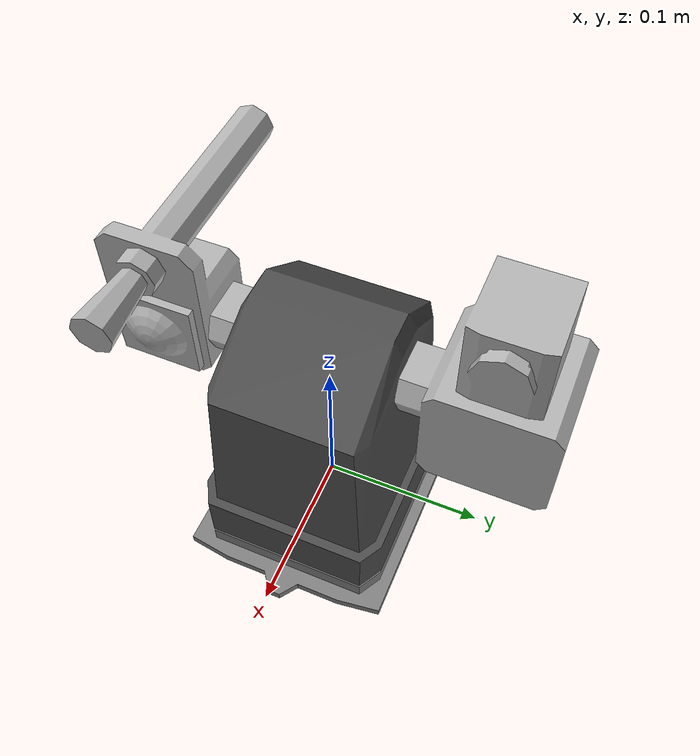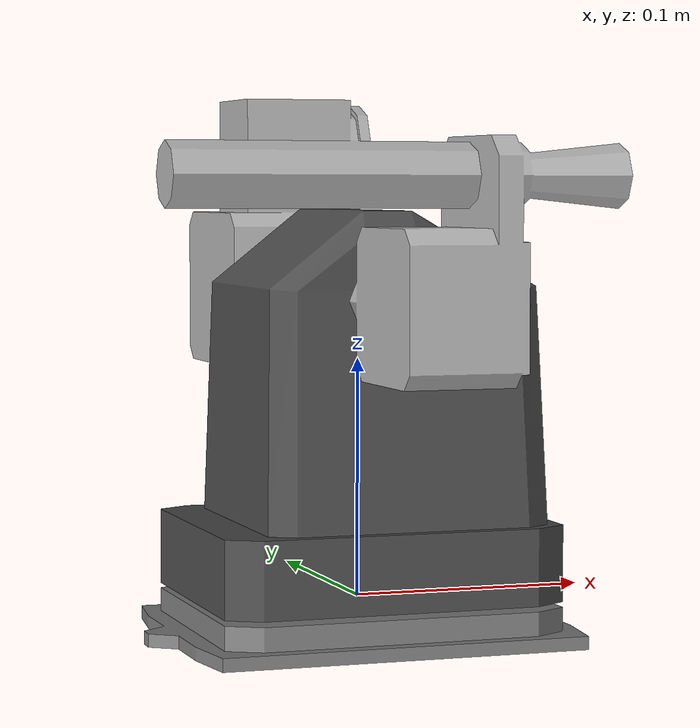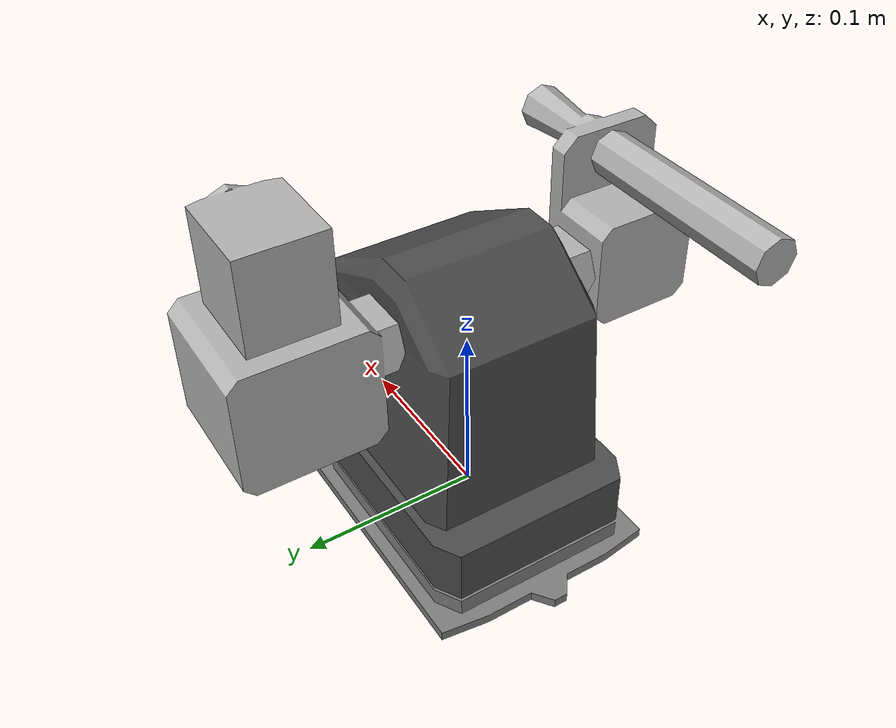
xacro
<?xml version="1.0"?>

<!-- Description of the inspection payload. -->
<robot name="anymal" xmlns:xacro="http://www.ros.org/wiki/xacro">

  <!-- Inspection payload -->
  <xacro:include filename="$(find inspection_payload_description)/urdf/inspection_payload_odrive.urdf.xacro"/>

  <link name="base"/>

  <xacro:inspection_payload name="inspection_payload" parent="base">
    <origin xyz="0.0 0.0 0.0" rpy="0 0 0"/>
  </xacro:inspection_payload>

</robot>

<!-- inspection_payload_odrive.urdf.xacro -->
<robot xmlns:xacro="http://www.ros.org/wiki/xacro">

  <!-- Parameters -->
  <xacro:arg name="simulation" default="false"/>
  <xacro:arg name="simulate_zoom_camera" default="true"/>
  <xacro:arg name="simulate_thermal_camera" default="true"/>

  <!-- Inspection payload description -->
  <xacro:macro name="inspection_payload_description" params="name parent version:='P-PTU-VTAL-A' *origin">

    <joint name="${parent}_to_${name}_mount" type="fixed">
      <parent link="${parent}"/>
      <child link="${name}_mount"/>
      <xacro:insert_block name="origin"/>
    </joint>

    <link name="${name}_mount">
      <visual>
        <origin xyz="0 0 -0.0165" rpy="0 0 0"/>
        <geometry>
          <mesh filename="package://inspection_payload_description/mesh/hatch.dae" scale="1 1 1"/>
        </geometry>
        <material name="gray_hatch">
          <color rgba="0.5 0.5 0.5 1"/>
        </material>
      </visual>
      <inertial>
        <origin xyz="-0.002 0.00 0.001" rpy="0 0 0"/>
        <mass value="0.469"/>
        <inertia ixx="0.000620738" ixy= "0.000009253" ixz="0.000000848"
                 iyy="0.000860056" iyz="0.000000268" izz="0.001239176"/>
      </inertial>
    </link>

    <joint name="${name}_mount_to_pan" type="revolute">
      <physics>
        <provide_feedback>true</provide_feedback>
      </physics>
      <parent link="${name}_mount"/>
      <child link="${name}_pan"/>
      <limit lower="-2.35619" upper="2.35619" effort="20" velocity="2"/>
      <origin xyz="0 0 0" rpy="0 0 0"/>
      <axis xyz="0 0 1"/>
      <!-- random/empirically chosen values (i.e. not physically meaningful), the model crashes if only non-zero damping was defined but no friction -->
      <dynamics damping="0.05" friction="0.01"/>
    </joint>

    <link name="${name}_pan">
      <visual>
        <origin xyz="0 0 -0.0165" rpy="0 0 0"/>
        <geometry>
          <mesh filename="package://inspection_payload_description/mesh/pan.dae" scale="1 1 1"/>
        </geometry>
        <material name="gray_pan">
          <color rgba="0.3 0.3 0.3 1"/>
        </material>
      </visual>
      <inertial>
        <origin xyz="0.006 -0.001 0.054" rpy="0 0 0"/>
        <mass value="1.408"/>
        <inertia ixx="0.007770372" ixy="0.000018673" ixz="0.000498393" iyy="0.008361515" iyz="0.000135184" izz="0.003593977"/>
      </inertial>

      <!-- Inspection Payload self filtering -->
  	  <self_filter>
        <origin xyz="0 0 0.1" rpy="0 0 0"/>
        <geometry>
          <box size="0.3 0.3 0.3"/>
        </geometry>
      </self_filter>
    </link>

    <joint name="${name}_pan_to_tilt" type="revolute">
      <physics>
        <provide_feedback>true</provide_feedback>
      </physics>
      <parent link="${name}_pan"/>
      <child link="${name}_tilt"/>
      <limit lower="-1.570796" upper="1.570796" effort="20" velocity="2"/>
      <origin xyz="0 0 0.126" rpy="0 0 0"/>
      <axis xyz="0 1 0"/>
      <!-- random/empirically chosen values (i.e. not physically meaningful), the model crashes if only non-zero damping was defined but no friction -->
      <dynamics damping="0.1" friction="0.05"/>
    </joint>

    <xacro:property name="tilt_mass" value="${1.67 if version == 'P-PTU-VTAL-B' else 1.35}" />
    <link name="${name}_tilt">
      <visual>
        <origin xyz="0 0 0" rpy="0 0 0"/>
        <geometry>
          <mesh filename="package://inspection_payload_description/mesh/tilt.dae" scale="1 1 1"/>
        </geometry>
        <material name="gray_tilt">
          <color rgba="0.7 0.7 0.7 1"/>
        </material>
      </visual>
      <inertial>
        <origin xyz="0.00065 0.02454 0.01174" rpy="0 0 0"/>
        <mass value="${tilt_mass}"/>
        <inertia ixx="0.01200407652" ixy="0.00003340690" ixz="0.00003333671" iyy="0.00165129659" iyz="0.00048462414" izz="0.01158824347"/>
      </inertial>
    </link>

    <joint name="${name}_tilt_to_head" type="fixed">
      <parent link="${name}_tilt"/>
      <child link="${name}_head"/>
      <origin xyz="0.0 0.0 0.0" rpy="0 0 0"/>
    </joint>

    <link name="${name}_head"/>

    <xacro:property name="camera_x" value="${0.069 if version == 'P-PTU-VTAL-B' else 0.035}" />
    <xacro:property name="camera_y" value="${-0.096 if version == 'P-PTU-VTAL-B' else 0.099}" />
    <xacro:property name="camera_z" value="${-0.0002 if version == 'P-PTU-VTAL-B' else -0.008}" />
    <joint name="${name}_head_to_camera" type="fixed">
      <parent link="${name}_head"/>
      <child link="${name}_camera"/>
      <origin xyz="${camera_x} ${camera_y} ${camera_z}" rpy="-1.57079633 0 -1.57079633"/>
    </joint>

    <link name="${name}_camera"/>

    <xacro:property name="thermal_camera_x" value="${0.026 if version == 'P-PTU-VTAL-B' else 0.028}" />
    <xacro:property name="thermal_camera_y" value="${0.0875 if version == 'P-PTU-VTAL-B' else 0.108}" />
    <xacro:property name="thermal_camera_z" value="${0.057 if version == 'P-PTU-VTAL-B' else 0.066}" />
    <joint name="${name}_head_to_thermal_camera" type="fixed">
      <parent link="${name}_head"/>
      <child link="${name}_thermal_camera"/>
      <origin xyz="${thermal_camera_x} ${thermal_camera_y} ${thermal_camera_z}" rpy="-1.57079633 0 -1.57079633"/>
    </joint>

    <link name="${name}_thermal_camera"/>

    <xacro:property name="light_x" value="${0.035 if version == 'P-PTU-VTAL-B' else 0.031}" />
    <xacro:property name="light_y" value="${0.091 if version == 'P-PTU-VTAL-B' else -0.096}" />
    <xacro:property name="light_z" value="${0.0 if version == 'P-PTU-VTAL-B' else 0.0}" />
    <joint name="${name}_head_to_light" type="fixed">
      <parent link="${name}_head"/>
      <child link="${name}_light"/>
      <origin xyz="${light_x} ${light_y} ${light_z}" rpy="-1.57079633 0 -1.57079633"/>
    </joint>

    <link name="${name}_light"/>

    <xacro:property name="microphone_x" value="${0.0411 if version == 'P-PTU-VTAL-B' else 0.035}" />
    <xacro:property name="microphone_y" value="${0.086 if version == 'P-PTU-VTAL-B' else -0.096}" />
    <xacro:property name="microphone_z" value="${-0.039 if version == 'P-PTU-VTAL-B' else 0.05}" />
    <joint name="${name}_head_to_microphone" type="fixed">
      <parent link="${name}_head"/>
      <child link="${name}_microphone"/>
      <origin xyz="${microphone_x} ${microphone_y} ${microphone_z}" rpy="-1.57079633 0 -1.57079633"/>
    </joint>

    <link name="${name}_microphone"/>

    <!-- Static default camera frame required for computations (e.g. point to position) -->
    <joint name="${name}_mount_to_camera_default" type="fixed">
      <parent link="${name}_mount"/>
      <child link="${name}_camera_default"/>
      <origin xyz="0.0 0.0 0.126" rpy="0 0 0"/>
    </joint>

    <link name="${name}_camera_default"/>

  </xacro:macro>

  <!-- Inspection payload Gazebo -->
  <xacro:macro name="inspection_payload" params="name parent version:='P-PTU-VTAL-A' *origin">

    <!-- Pantilt head description -->
    <xacro:inspection_payload_description name="${name}" parent="${parent}" version="${version}">
      <xacro:insert_block name="origin"/>
    </xacro:inspection_payload_description>

    <xacro:if value="$(arg simulation)">

      <!-- Camera simulation and driver -->
      <xacro:if value="$(arg simulate_zoom_camera)">
        <gazebo reference="${name}_camera">
          <sensor type="camera" name="${name}_camera">
            <update_rate>30.0</update_rate>
            <camera name="${name}_camera">
              <pose>0 0 0 1.57079633 -1.57079633 0</pose>
              <horizontal_fov>1.3962634</horizontal_fov>
              <image>
                <width>1920</width>
                <height>1080</height>
                <format>R8G8B8</format>
              </image>
              <clip>
                <near>0.02</near>
                <far>300</far>
              </clip>
              <noise>
                <type>gaussian</type>
                <mean>0.0</mean>
                <stddev>0.007</stddev>
              </noise>
            </camera>
            <plugin name="${name}_camera_controller" filename="libzoom_camera_gazebo_plugin.so">
              <alwaysOn>true</alwaysOn>
              <updateRate>15.0</updateRate>
              <cameraName>${name}_camera</cameraName>
              <imageTopicName>/zoom_camera/image_raw</imageTopicName>
              <cameraInfoTopicName>/zoom_camera/camera_info</cameraInfoTopicName>
              <frameName>${name}_camera</frameName>
              <hackBaseline>0.07</hackBaseline>
              <distortionK1>0.0</distortionK1>
              <distortionK2>0.0</distortionK2>
              <distortionK3>0.0</distortionK3>
              <distortionT1>0.0</distortionT1>
              <distortionT2>0.0</distortionT2>
              <sensorWidth>4.8</sensorWidth>
              <initialHorizontalFieldOfView>1.31</initialHorizontalFieldOfView>
            </plugin>
          </sensor>
        </gazebo>
      </xacro:if>

      <!-- Thermal camera simulation and driver -->
      <xacro:if value="$(arg simulate_thermal_camera)">
        <gazebo reference="${name}_thermal_camera">
          <sensor type="camera" name="${name}_thermal_camera">
            <update_rate>7.0</update_rate>
            <camera name="${name}_thermal_camera">
              <pose>0 0 0 1.57079633 -1.57079633 0</pose>
              <horizontal_fov>0.63</horizontal_fov>
              <image>
                <width>160</width>
                <height>120</height>
                <format>R8G8B8</format>
              </image>
              <clip>
                <near>0.02</near>
                <far>300</far>
              </clip>
            </camera>
            <plugin name="${name}_thermal_camera_controller" filename="libthermal_camera_gazebo_plugin.so">
              <alwaysOn>true</alwaysOn>
              <updateRate>7.0</updateRate>
              <cameraName>${name}_thermal_camera</cameraName>
              <imageTopicName>/thermal_camera/raw/thermal_image</imageTopicName>
              <cameraInfoTopicName>/thermal_camera/raw/camera_info</cameraInfoTopicName>
              <frameName>thermal_camera</frameName>
              <hackBaseline>0.07</hackBaseline>
              <distortionK1>0.0</distortionK1>
              <distortionK2>0.0</distortionK2>
              <distortionK3>0.0</distortionK3>
              <distortionT1>0.0</distortionT1>
              <distortionT2>0.0</distortionT2>
              <max_temperature_on_scale>700</max_temperature_on_scale>
              <min_temperature_on_scale>-10</min_temperature_on_scale>
            </plugin>
          </sensor>
        </gazebo>
      </xacro:if>

      <!-- Pantilt head version 3 simulation driver-->
      <gazebo>

        <plugin filename="libinspection_payload_gazebo.so" name="${name}_gazebo_plugin">
          <joint_name_pan>${name}_mount_to_pan</joint_name_pan>
          <joint_name_tilt>${name}_pan_to_tilt</joint_name_tilt>
          <command_topic_name>/inspection_payload/command</command_topic_name>
          <joint_state_topic_name>/inspection_payload/joint_states</joint_state_topic_name>
          <inspection_payload_state_topic_name>/inspection_payload/state</inspection_payload_state_topic_name>
          <set_to_rest_service_name>/inspection_payload/set_to_rest</set_to_rest_service_name>
          <set_to_zero_service_name>/inspection_payload/set_to_zero</set_to_zero_service_name>
          <!-- Update time step -->
          <controller_update_time_step>0.01</controller_update_time_step>
          <communication_update_time_step>0.01</communication_update_time_step>
          <!-- Pan position controller parameters -->
          <position_gain_p_pan>50.0</position_gain_p_pan>
          <position_gain_i_pan>5.0</position_gain_i_pan>
          <position_gain_d_pan>4.5</position_gain_d_pan>
          <position_integrator_error_bound_pan>0.1</position_integrator_error_bound_pan>
          <position_integrator_saturation_pan>0.01</position_integrator_saturation_pan>
          <!-- Pan velocity controller parameters -->
          <velocity_gain_p_pan>10.0</velocity_gain_p_pan>
          <velocity_gain_i_pan>0.5</velocity_gain_i_pan>
          <velocity_gain_d_pan>0.001</velocity_gain_d_pan>
          <velocity_integrator_error_bound_pan>0.1</velocity_integrator_error_bound_pan>
          <velocity_integrator_saturation_pan>0.01</velocity_integrator_saturation_pan>
          <!-- Tilt position controller parameters -->
          <position_gain_p_tilt>400.0</position_gain_p_tilt>
          <position_gain_i_tilt>0.5</position_gain_i_tilt>
          <position_gain_d_tilt>0.001</position_gain_d_tilt>
          <position_integrator_error_bound_tilt>0.1</position_integrator_error_bound_tilt>
          <position_integrator_saturation_tilt>1.0</position_integrator_saturation_tilt>
          <!-- Tilt velocity controller parameters -->
          <velocity_gain_p_tilt>1.0</velocity_gain_p_tilt>
          <velocity_gain_i_tilt>0.000</velocity_gain_i_tilt>
          <velocity_gain_d_tilt>0.000</velocity_gain_d_tilt>
          <velocity_integrator_error_bound_tilt>0.1</velocity_integrator_error_bound_tilt>
          <velocity_integrator_saturation_tilt>1.0</velocity_integrator_saturation_tilt>
        </plugin>

      </gazebo>

    </xacro:if>

  </xacro:macro>

</robot>
